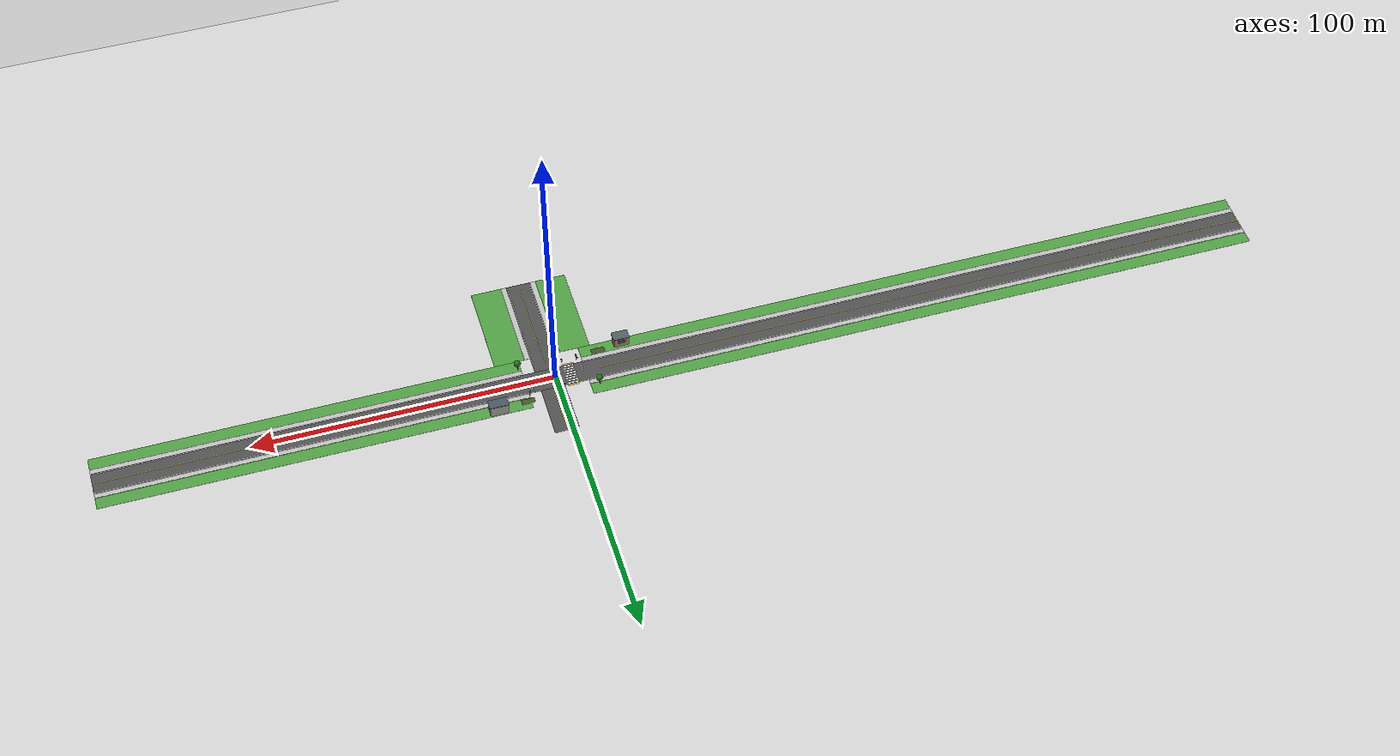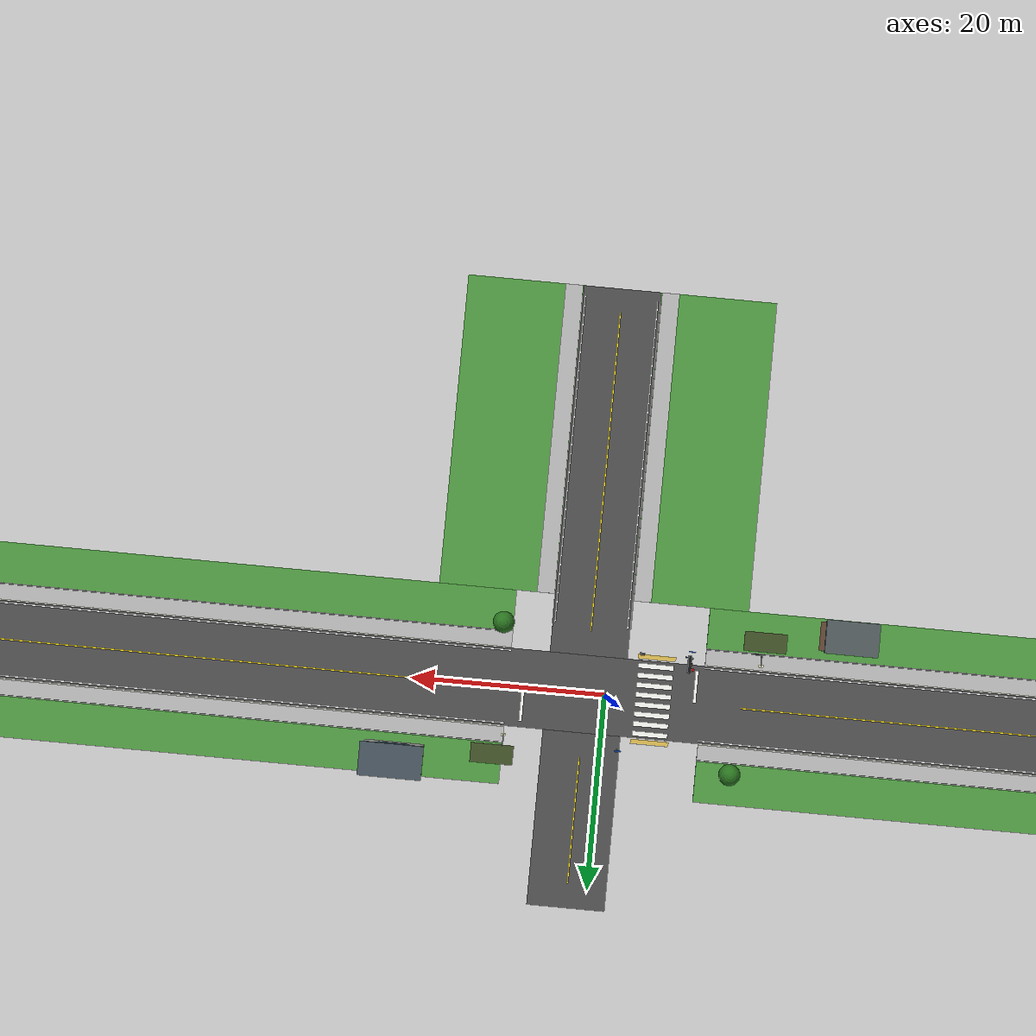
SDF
<?xml version="1.0" ?>
<sdf version="1.6">
  <world name="safe_drive_signal_intersection">
    <plugin name="safe_drive_ground_truth" filename="libgazebo_ros_state.so">
      <ros>
        <namespace>/safe_drive/gazebo</namespace>
      </ros>
      <update_rate>20.0</update_rate>
    </plugin>
    <physics name="ode" type="ode">
      <max_step_size>0.001</max_step_size>
      <real_time_factor>1.0</real_time_factor>
      <real_time_update_rate>1000</real_time_update_rate>
    </physics>

    <gravity>0 0 -9.81</gravity>
    <magnetic_field>6e-6 2.3e-5 -4.2e-5</magnetic_field>
    <atmosphere type="adiabatic"/>

    <!-- Catch vehicles that leave the finite test road while a controller is
         being developed. The road surface remains the active driving plane. -->
    <include>
      <uri>model://ground_plane</uri>
      <pose>0 0 -0.1 0 0 0</pose>
    </include>

    <scene>
      <ambient>0.45 0.45 0.45 1</ambient>
      <background>0.70 0.85 1.0 1</background>
      <shadows>true</shadows>
    </scene>

    <gui>
      <camera name="user_camera">
        <track_visual>
          <name>safe_drive_ego</name>
          <static>true</static>
          <use_model_frame>true</use_model_frame>
          <xyz>-12 0 8</xyz>
        </track_visual>
      </camera>
    </gui>

    <light name="sun" type="directional">
      <cast_shadows>true</cast_shadows>
      <pose>0 0 10 0 0 0</pose>
      <diffuse>0.8 0.8 0.8 1</diffuse>
      <specular>0.2 0.2 0.2 1</specular>
      <attenuation>
        <range>1000</range>
        <constant>0.9</constant>
        <linear>0.01</linear>
        <quadratic>0.001</quadratic>
      </attenuation>
      <direction>-0.5 0.1 -0.9</direction>
    </light>

    <model name="road">
      <static>true</static>
      <link name="road_link">
        <collision name="collision">
          <pose>-45 0 -0.05 0 0 0</pose>
          <geometry><box><size>390 8 0.1</size></box></geometry>
          <surface>
            <friction><ode><mu>1.0</mu><mu2>1.0</mu2></ode></friction>
          </surface>
        </collision>
        <visual name="asphalt">
          <pose>-45 0 -0.045 0 0 0</pose>
          <geometry><box><size>390 8 0.01</size></box></geometry>
          <material>
            <script>
              <uri>file://safe_drive_road/materials/scripts</uri>
              <uri>file://safe_drive_road/materials/textures</uri>
              <name>SafeDrive/Asphalt</name>
            </script>
          </material>
        </visual>
        <visual name="center_line_a">
          <pose>-127 0 -0.037 0 0 0</pose>
          <geometry><box><size>226 0.12 0.01</size></box></geometry>
          <material><ambient>0.95 0.85 0.10 1</ambient><diffuse>0.95 0.85 0.10 1</diffuse></material>
        </visual>
        <visual name="center_line_c">
          <pose>80 0 -0.037 0 0 0</pose>
          <geometry><box><size>140 0.12 0.01</size></box></geometry>
          <material><ambient>0.95 0.85 0.10 1</ambient><diffuse>0.95 0.85 0.10 1</diffuse></material>
        </visual>
        <visual name="left_edge_line_west">
          <pose>-125 3.75 -0.037 0 0 0</pose>
          <geometry><box><size>230 0.12 0.01</size></box></geometry>
          <material><ambient>0.95 0.95 0.95 1</ambient><diffuse>0.95 0.95 0.95 1</diffuse></material>
        </visual>
        <visual name="left_edge_line_east">
          <pose>80 3.75 -0.037 0 0 0</pose>
          <geometry><box><size>140 0.12 0.01</size></box></geometry>
          <material><ambient>0.95 0.95 0.95 1</ambient><diffuse>0.95 0.95 0.95 1</diffuse></material>
        </visual>
        <visual name="right_edge_line_west">
          <pose>-125 -3.75 -0.037 0 0 0</pose>
          <geometry><box><size>230 0.12 0.01</size></box></geometry>
          <material><ambient>0.95 0.95 0.95 1</ambient><diffuse>0.95 0.95 0.95 1</diffuse></material>
        </visual>
        <visual name="right_edge_line_east">
          <pose>80 -3.75 -0.037 0 0 0</pose>
          <geometry><box><size>140 0.12 0.01</size></box></geometry>
          <material><ambient>0.95 0.95 0.95 1</ambient><diffuse>0.95 0.95 0.95 1</diffuse></material>
        </visual>
        <!-- Zebra bars run parallel to east-west vehicle travel, repeated
             across the pedestrian's north-south path. Paint has no collision. -->
        <visual name="crosswalk_bar_1"><pose>-5 -3.45 -0.030 0 0 0</pose><geometry><box><size>3.6 0.50 0.012</size></box></geometry><material><ambient>0.96 0.96 0.94 1</ambient><diffuse>0.96 0.96 0.94 1</diffuse></material></visual>
        <visual name="crosswalk_bar_2"><pose>-5 -2.45 -0.030 0 0 0</pose><geometry><box><size>3.6 0.50 0.012</size></box></geometry><material><ambient>0.96 0.96 0.94 1</ambient><diffuse>0.96 0.96 0.94 1</diffuse></material></visual>
        <visual name="crosswalk_bar_3"><pose>-5 -1.45 -0.030 0 0 0</pose><geometry><box><size>3.6 0.50 0.012</size></box></geometry><material><ambient>0.96 0.96 0.94 1</ambient><diffuse>0.96 0.96 0.94 1</diffuse></material></visual>
        <visual name="crosswalk_bar_4"><pose>-5 -0.45 -0.030 0 0 0</pose><geometry><box><size>3.6 0.50 0.012</size></box></geometry><material><ambient>0.96 0.96 0.94 1</ambient><diffuse>0.96 0.96 0.94 1</diffuse></material></visual>
        <visual name="crosswalk_bar_5"><pose>-5 0.55 -0.030 0 0 0</pose><geometry><box><size>3.6 0.50 0.012</size></box></geometry><material><ambient>0.96 0.96 0.94 1</ambient><diffuse>0.96 0.96 0.94 1</diffuse></material></visual>
        <visual name="crosswalk_bar_6"><pose>-5 1.55 -0.030 0 0 0</pose><geometry><box><size>3.6 0.50 0.012</size></box></geometry><material><ambient>0.96 0.96 0.94 1</ambient><diffuse>0.96 0.96 0.94 1</diffuse></material></visual>
        <visual name="crosswalk_bar_7"><pose>-5 2.55 -0.030 0 0 0</pose><geometry><box><size>3.6 0.50 0.012</size></box></geometry><material><ambient>0.96 0.96 0.94 1</ambient><diffuse>0.96 0.96 0.94 1</diffuse></material></visual>
        <visual name="crosswalk_bar_8"><pose>-5 3.55 -0.030 0 0 0</pose><geometry><box><size>3.6 0.50 0.012</size></box></geometry><material><ambient>0.96 0.96 0.94 1</ambient><diffuse>0.96 0.96 0.94 1</diffuse></material></visual>
        <!-- The 0.30 m approach line ends 2.3 m before the nearest bar.
             Other approaches stop outside the central intersection square. -->
        <visual name="eastbound_stop_line"><pose>-9.25 -1.75 -0.029 0 0 0</pose><geometry><box><size>0.30 3.30 0.012</size></box></geometry><material><ambient>0.96 0.96 0.94 1</ambient><diffuse>0.96 0.96 0.94 1</diffuse></material></visual>
        <visual name="westbound_stop_line"><pose>8.4 1.75 -0.029 0 0 0</pose><geometry><box><size>0.30 3.30 0.012</size></box></geometry><material><ambient>0.96 0.96 0.94 1</ambient><diffuse>0.96 0.96 0.94 1</diffuse></material></visual>
      </link>
    </model>
    <model name="cross_road">
      <static>true</static>
      <link name="surface">
        <collision name="north_road_collision"><pose>2 13 -0.05 0 0 0</pose><geometry><box><size>8 18 0.1</size></box></geometry></collision>
        <collision name="south_road_collision"><pose>2 -23 -0.05 0 0 0</pose><geometry><box><size>8 38 0.1</size></box></geometry></collision>
        <visual name="north_asphalt"><pose>2 13 -0.045 0 0 0</pose><geometry><box><size>8 18 0.01</size></box></geometry><material><script><uri>file://safe_drive_road/materials/scripts</uri><uri>file://safe_drive_road/materials/textures</uri><name>SafeDrive/Asphalt</name></script></material></visual>
        <visual name="south_asphalt"><pose>2 -23 -0.045 0 0 0</pose><geometry><box><size>8 38 0.01</size></box></geometry><material><script><uri>file://safe_drive_road/materials/scripts</uri><uri>file://safe_drive_road/materials/textures</uri><name>SafeDrive/Asphalt</name></script></material></visual>
        <visual name="north_center_line"><pose>2 13 -0.035 0 0 0</pose><geometry><box><size>0.12 13 0.012</size></box></geometry><material><ambient>0.95 0.85 0.1 1</ambient><diffuse>0.95 0.85 0.1 1</diffuse></material></visual>
        <visual name="south_center_line"><pose>2 -23 -0.035 0 0 0</pose><geometry><box><size>0.12 33 0.012</size></box></geometry><material><ambient>0.95 0.85 0.1 1</ambient><diffuse>0.95 0.85 0.1 1</diffuse></material></visual>
        <visual name="south_west_edge_line"><pose>-1.75 -24 -0.035 0 0 0</pose><geometry><box><size>0.10 34 0.012</size></box></geometry><material><ambient>0.95 0.95 0.95 1</ambient><diffuse>0.95 0.95 0.95 1</diffuse></material></visual>
        <visual name="south_east_edge_line"><pose>5.75 -24 -0.035 0 0 0</pose><geometry><box><size>0.10 34 0.012</size></box></geometry><material><ambient>0.95 0.95 0.95 1</ambient><diffuse>0.95 0.95 0.95 1</diffuse></material></visual>
      </link>
    </model>
    <!-- Roadside vehicle signal: three horizontal circular aspects face
         approaching eastbound traffic. It is independent of the pedestrian face. -->
    <model name="vehicle_signal_fixture"><static>true</static><link name="post">
      <visual name="pole"><pose>-8.0 -4.72 1.48 0 0 0</pose><geometry><cylinder><radius>0.075</radius><length>2.96</length></cylinder></geometry><material><ambient>0.20 0.23 0.25 1</ambient><diffuse>0.31 0.34 0.36 1</diffuse></material></visual>
      <visual name="housing"><pose>-8.0 -4.10 3.00 0 0 0</pose><geometry><box><size>0.30 1.78 0.52</size></box></geometry><material><ambient>0.035 0.045 0.05 1</ambient><diffuse>0.065 0.075 0.085 1</diffuse></material></visual>
      <visual name="bracket"><pose>-8.0 -4.43 2.98 0 0 0</pose><geometry><box><size>0.12 0.67 0.10</size></box></geometry><material><ambient>0.20 0.23 0.25 1</ambient><diffuse>0.31 0.34 0.36 1</diffuse></material></visual>
      <visual name="red_lens"><pose>-8.19 -3.55 3.00 0 0 0</pose><geometry><sphere><radius>0.18</radius></sphere></geometry><material><ambient>0.18 0.025 0.02 1</ambient><diffuse>0.18 0.025 0.02 1</diffuse></material></visual>
      <visual name="yellow_lens"><pose>-8.19 -4.1 3.00 0 0 0</pose><geometry><sphere><radius>0.18</radius></sphere></geometry><material><ambient>0.18 0.11 0.015 1</ambient><diffuse>0.18 0.11 0.015 1</diffuse></material></visual>
      <visual name="green_lens"><pose>-8.19 -4.65 3.00 0 0 0</pose><geometry><sphere><radius>0.18</radius></sphere></geometry><material><ambient>0.015 0.15 0.025 1</ambient><diffuse>0.015 0.15 0.025 1</diffuse></material></visual>
    </link></model>
    <!-- Pedestrian signal: two square aspects at the south curb. Its lit face
         points north (+y) toward the crossing and the following camera. -->
    <model name="pedestrian_signal_fixture"><static>true</static><link name="post">
      <visual name="pole"><pose>-3.3 -4.68 1.04 0 0 0</pose><geometry><cylinder><radius>0.05</radius><length>2.08</length></cylinder></geometry><material><ambient>0.20 0.23 0.25 1</ambient><diffuse>0.31 0.34 0.36 1</diffuse></material></visual>
      <visual name="housing"><pose>-3.3 -4.70 2.08 0 0 0</pose><geometry><box><size>0.48 0.23 0.83</size></box></geometry><material><ambient>0.035 0.045 0.05 1</ambient><diffuse>0.065 0.075 0.085 1</diffuse></material></visual>
      <visual name="dont_walk_lens"><pose>-3.3 -4.56 2.27 0 0 0</pose><geometry><box><size>0.31 0.025 0.30</size></box></geometry><material><ambient>0.17 0.025 0.02 1</ambient><diffuse>0.17 0.025 0.02 1</diffuse></material></visual>
      <visual name="walk_lens"><pose>-3.3 -4.56 1.89 0 0 0</pose><geometry><box><size>0.31 0.025 0.30</size></box></geometry><material><ambient>0.02 0.15 0.04 1</ambient><diffuse>0.02 0.15 0.04 1</diffuse></material></visual>
    </link></model>
    <model name="vehicle_red_lamp"><static>false</static><pose>-8.43 -3.55 3.0 0 0 0</pose><link name="bulb"><gravity>false</gravity><visual name="lit"><geometry><sphere><radius>0.15</radius></sphere></geometry><material><ambient>1 0.035 0.025 1</ambient><diffuse>1 0.035 0.025 1</diffuse><emissive>1 0.035 0.025 1</emissive></material></visual></link></model>
    <model name="vehicle_yellow_lamp"><static>false</static><pose>-8.43 -4.1 -2.0 0 0 0</pose><link name="bulb"><gravity>false</gravity><visual name="lit"><geometry><sphere><radius>0.15</radius></sphere></geometry><material><ambient>1 0.60 0.02 1</ambient><diffuse>1 0.60 0.02 1</diffuse><emissive>1 0.60 0.02 1</emissive></material></visual></link></model>
    <model name="vehicle_green_lamp"><static>false</static><pose>-8.43 -4.65 -2.0 0 0 0</pose><link name="bulb"><gravity>false</gravity><visual name="lit"><geometry><sphere><radius>0.15</radius></sphere></geometry><material><ambient>0.03 0.95 0.08 1</ambient><diffuse>0.03 0.95 0.08 1</diffuse><emissive>0.03 0.95 0.08 1</emissive></material></visual></link></model>
    <model name="pedestrian_dont_walk_lamp"><static>false</static><pose>-3.3 -4.53 2.27 0 0 0</pose><link name="bulb"><gravity>false</gravity><visual name="lit"><geometry><box><size>0.26 0.025 0.25</size></box></geometry><material><ambient>1 0.04 0.03 1</ambient><diffuse>1 0.04 0.03 1</diffuse><emissive>1 0.04 0.03 1</emissive></material></visual></link></model>
    <model name="pedestrian_walk_lamp"><static>false</static><pose>-3.3 -4.53 -2.0 0 0 0</pose><link name="bulb"><gravity>false</gravity><visual name="lit"><geometry><box><size>0.26 0.025 0.25</size></box></geometry><material><ambient>0.03 0.95 0.08 1</ambient><diffuse>0.03 0.95 0.08 1</diffuse><emissive>0.03 0.95 0.08 1</emissive></material></visual></link></model>
    <model name="roadside">
      <static>true</static>
      <link name="streetscape">
        <visual name="north_grass_west">
          <pose>-125 7.0 -0.06 0 0 0</pose>
          <geometry><box><size>230 6 0.08</size></box></geometry>
          <material><script><uri>file://safe_drive_road/materials/scripts</uri><uri>file://safe_drive_road/materials/textures</uri><name>SafeDrive/Grass</name></script></material>
        </visual>
        <visual name="north_grass_east">
          <pose>80 7.0 -0.06 0 0 0</pose>
          <geometry><box><size>140 6 0.08</size></box></geometry>
          <material><script><uri>file://safe_drive_road/materials/scripts</uri><uri>file://safe_drive_road/materials/textures</uri><name>SafeDrive/Grass</name></script></material>
        </visual>
        <visual name="south_grass_west">
          <pose>-125 -7.0 -0.06 0 0 0</pose>
          <geometry><box><size>230 6 0.08</size></box></geometry>
          <material><script><uri>file://safe_drive_road/materials/scripts</uri><uri>file://safe_drive_road/materials/textures</uri><name>SafeDrive/Grass</name></script></material>
        </visual>
        <visual name="south_grass_east">
          <pose>80 -7.0 -0.06 0 0 0</pose>
          <geometry><box><size>140 6 0.08</size></box></geometry>
          <material><script><uri>file://safe_drive_road/materials/scripts</uri><uri>file://safe_drive_road/materials/textures</uri><name>SafeDrive/Grass</name></script></material>
        </visual>
        <visual name="south_arm_grass_west">
          <pose>-8 -26 -0.06 0 0 0</pose>
          <geometry><box><size>12 32 0.08</size></box></geometry>
          <material><script><uri>file://safe_drive_road/materials/scripts</uri><uri>file://safe_drive_road/materials/textures</uri><name>SafeDrive/Grass</name></script></material>
        </visual>
        <visual name="south_arm_grass_east">
          <pose>12 -26 -0.06 0 0 0</pose>
          <geometry><box><size>12 32 0.08</size></box></geometry>
          <material><script><uri>file://safe_drive_road/materials/scripts</uri><uri>file://safe_drive_road/materials/textures</uri><name>SafeDrive/Grass</name></script></material>
        </visual>
        <visual name="south_arm_sidewalk_west">
          <pose>-3 -26 -0.015 0 0 0</pose>
          <geometry><box><size>1.8 32 0.06</size></box></geometry>
          <material><script><uri>file://safe_drive_road/materials/scripts</uri><uri>file://safe_drive_road/materials/textures</uri><name>SafeDrive/Concrete</name></script></material>
        </visual>
        <visual name="south_arm_sidewalk_east">
          <pose>7 -26 -0.015 0 0 0</pose>
          <geometry><box><size>1.8 32 0.06</size></box></geometry>
          <material><script><uri>file://safe_drive_road/materials/scripts</uri><uri>file://safe_drive_road/materials/textures</uri><name>SafeDrive/Concrete</name></script></material>
        </visual>
        <!-- The curb begins beyond the swept right-turn corner. All curb and
             sidewalk pieces here are visual-only; the road carries wheels. -->
        <visual name="south_arm_curb_west">
          <pose>-2.04 -24 -0.005 0 0 0</pose>
          <geometry><box><size>0.08 34 0.05</size></box></geometry>
          <material><ambient>0.75 0.75 0.70 1</ambient><diffuse>0.80 0.80 0.75 1</diffuse></material>
        </visual>
        <visual name="south_arm_curb_east">
          <pose>6.04 -24 -0.005 0 0 0</pose>
          <geometry><box><size>0.08 34 0.05</size></box></geometry>
          <material><ambient>0.75 0.75 0.70 1</ambient><diffuse>0.80 0.80 0.75 1</diffuse></material>
        </visual>
        <visual name="north_sidewalk_west">
          <pose>-125 4.9 -0.015 0 0 0</pose>
          <geometry><box><size>230 1.8 0.06</size></box></geometry>
          <material><script><uri>file://safe_drive_road/materials/scripts</uri><uri>file://safe_drive_road/materials/textures</uri><name>SafeDrive/Concrete</name></script></material>
        </visual>
        <visual name="north_sidewalk_east">
          <pose>80 4.9 -0.015 0 0 0</pose>
          <geometry><box><size>140 1.8 0.06</size></box></geometry>
          <material><script><uri>file://safe_drive_road/materials/scripts</uri><uri>file://safe_drive_road/materials/textures</uri><name>SafeDrive/Concrete</name></script></material>
        </visual>
        <visual name="south_sidewalk_west">
          <pose>-125 -4.9 -0.015 0 0 0</pose>
          <geometry><box><size>230 1.8 0.06</size></box></geometry>
          <material><script><uri>file://safe_drive_road/materials/scripts</uri><uri>file://safe_drive_road/materials/textures</uri><name>SafeDrive/Concrete</name></script></material>
        </visual>
        <visual name="south_sidewalk_east">
          <pose>80 -4.9 -0.015 0 0 0</pose>
          <geometry><box><size>140 1.8 0.06</size></box></geometry>
          <material><script><uri>file://safe_drive_road/materials/scripts</uri><uri>file://safe_drive_road/materials/textures</uri><name>SafeDrive/Concrete</name></script></material>
        </visual>
        <visual name="north_curb_west">
          <pose>-125 4.04 0.0 0 0 0</pose>
          <geometry><box><size>230 0.12 0.08</size></box></geometry>
          <material><ambient>0.75 0.75 0.70 1</ambient><diffuse>0.80 0.80 0.75 1</diffuse></material>
        </visual>
        <visual name="north_curb_east">
          <pose>80 4.04 0.0 0 0 0</pose>
          <geometry><box><size>140 0.12 0.08</size></box></geometry>
          <material><ambient>0.75 0.75 0.70 1</ambient><diffuse>0.80 0.80 0.75 1</diffuse></material>
        </visual>
        <visual name="south_curb_west">
          <pose>-125 -4.04 0.0 0 0 0</pose>
          <geometry><box><size>230 0.12 0.08</size></box></geometry>
          <material><ambient>0.75 0.75 0.70 1</ambient><diffuse>0.80 0.80 0.75 1</diffuse></material>
        </visual>
        <visual name="south_curb_east">
          <pose>80 -4.04 0.0 0 0 0</pose>
          <geometry><box><size>140 0.12 0.08</size></box></geometry>
          <material><ambient>0.75 0.75 0.70 1</ambient><diffuse>0.80 0.80 0.75 1</diffuse></material>
        </visual>
        <!-- Visual-only paving and roadside props keep the tested road contact
             and the pedestrian crossing geometry unchanged. -->
        <visual name="north_sidewalk_band_west">
          <pose>-125 5.70 0.018 0 0 0</pose>
          <geometry><box><size>230 0.055 0.004</size></box></geometry>
          <material><ambient>0.38 0.40 0.39 1</ambient><diffuse>0.42 0.44 0.42 1</diffuse></material>
        </visual>
        <visual name="north_sidewalk_band_east">
          <pose>80 5.70 0.018 0 0 0</pose>
          <geometry><box><size>140 0.055 0.004</size></box></geometry>
          <material><ambient>0.38 0.40 0.39 1</ambient><diffuse>0.42 0.44 0.42 1</diffuse></material>
        </visual>
        <visual name="south_sidewalk_band_west">
          <pose>-125 -5.70 0.018 0 0 0</pose>
          <geometry><box><size>230 0.055 0.004</size></box></geometry>
          <material><ambient>0.38 0.40 0.39 1</ambient><diffuse>0.42 0.44 0.42 1</diffuse></material>
        </visual>
        <visual name="south_sidewalk_band_east">
          <pose>80 -5.70 0.018 0 0 0</pose>
          <geometry><box><size>140 0.055 0.004</size></box></geometry>
          <material><ambient>0.38 0.40 0.39 1</ambient><diffuse>0.42 0.44 0.42 1</diffuse></material>
        </visual>
        <visual name="north_crossing_entry">
          <pose>-5 4.38 0.019 0 0 0</pose>
          <geometry><box><size>3.90 0.46 0.006</size></box></geometry>
          <material><ambient>0.73 0.63 0.27 1</ambient><diffuse>0.84 0.72 0.31 1</diffuse></material>
        </visual>
        <visual name="south_crossing_entry">
          <pose>-5 -4.38 0.019 0 0 0</pose>
          <geometry><box><size>3.90 0.46 0.006</size></box></geometry>
          <material><ambient>0.73 0.63 0.27 1</ambient><diffuse>0.84 0.72 0.31 1</diffuse></material>
        </visual>
        <visual name="north_planting_bed">
          <pose>11 7.0 -0.01 0 0 0</pose>
          <geometry><box><size>4.4 2.0 0.035</size></box></geometry>
          <material><ambient>0.18 0.24 0.12 1</ambient><diffuse>0.25 0.31 0.15 1</diffuse></material>
        </visual>
        <visual name="south_planting_bed">
          <pose>-16 -7.0 -0.01 0 0 0</pose>
          <geometry><box><size>4.4 2.0 0.035</size></box></geometry>
          <material><ambient>0.18 0.24 0.12 1</ambient><diffuse>0.25 0.31 0.15 1</diffuse></material>
        </visual>
        <visual name="north_lamp_post">
          <pose>10 5.70 2.10 0 0 0</pose>
          <geometry><cylinder><radius>0.065</radius><length>4.20</length></cylinder></geometry>
          <material><ambient>0.24 0.28 0.31 1</ambient><diffuse>0.36 0.40 0.43 1</diffuse></material>
        </visual>
        <visual name="north_lamp_arm">
          <pose>10 5.15 4.12 0 0 0</pose>
          <geometry><box><size>0.09 1.18 0.08</size></box></geometry>
          <material><ambient>0.24 0.28 0.31 1</ambient><diffuse>0.36 0.40 0.43 1</diffuse></material>
        </visual>
        <visual name="north_lamp_head">
          <pose>10 4.62 4.06 0 0 0</pose>
          <geometry><box><size>0.46 0.24 0.10</size></box></geometry>
          <material><ambient>0.83 0.81 0.64 1</ambient><diffuse>0.88 0.86 0.70 1</diffuse></material>
        </visual>
        <visual name="south_lamp_post">
          <pose>-15 -5.70 2.10 0 0 0</pose>
          <geometry><cylinder><radius>0.065</radius><length>4.20</length></cylinder></geometry>
          <material><ambient>0.24 0.28 0.31 1</ambient><diffuse>0.36 0.40 0.43 1</diffuse></material>
        </visual>
        <visual name="south_lamp_arm">
          <pose>-15 -5.15 4.12 0 0 0</pose>
          <geometry><box><size>0.09 1.18 0.08</size></box></geometry>
          <material><ambient>0.24 0.28 0.31 1</ambient><diffuse>0.36 0.40 0.43 1</diffuse></material>
        </visual>
        <visual name="south_lamp_head">
          <pose>-15 -4.62 4.06 0 0 0</pose>
          <geometry><box><size>0.46 0.24 0.10</size></box></geometry>
          <material><ambient>0.83 0.81 0.64 1</ambient><diffuse>0.88 0.86 0.70 1</diffuse></material>
        </visual>
        <visual name="north_pavilion_body">
          <pose>21 8.25 2.0 0 0 0</pose>
          <geometry><box><size>6.0 3.1 4.0</size></box></geometry>
          <material><ambient>0.50 0.52 0.49 1</ambient><diffuse>0.66 0.68 0.64 1</diffuse></material>
        </visual>
        <visual name="north_pavilion_roof">
          <pose>21 8.25 4.12 0 0 0</pose>
          <geometry><box><size>6.4 3.4 0.25</size></box></geometry>
          <material><ambient>0.19 0.24 0.29 1</ambient><diffuse>0.27 0.32 0.36 1</diffuse></material>
        </visual>
        <visual name="north_pavilion_window">
          <pose>21 6.69 2.25 0 0 0</pose>
          <geometry><box><size>3.2 0.025 1.35</size></box></geometry>
          <material><ambient>0.11 0.23 0.29 1</ambient><diffuse>0.20 0.35 0.41 1</diffuse></material>
        </visual>
        <visual name="south_pavilion_body">
          <pose>-24 -8.20 1.75 0 0 0</pose>
          <geometry><box><size>5.0 3.0 3.5</size></box></geometry>
          <material><ambient>0.57 0.42 0.32 1</ambient><diffuse>0.70 0.53 0.41 1</diffuse></material>
        </visual>
        <visual name="south_pavilion_roof">
          <pose>-24 -8.20 3.62 0 0 0</pose>
          <geometry><box><size>5.4 3.4 0.25</size></box></geometry>
          <material><ambient>0.22 0.26 0.28 1</ambient><diffuse>0.31 0.35 0.36 1</diffuse></material>
        </visual>
        <visual name="south_pavilion_window">
          <pose>-24 -6.69 2.02 0 0 0</pose>
          <geometry><box><size>2.7 0.025 1.15</size></box></geometry>
          <material><ambient>0.11 0.23 0.29 1</ambient><diffuse>0.20 0.35 0.41 1</diffuse></material>
        </visual>
        <visual name="south_crossing_sign_post">
          <pose>-8.3 -5.35 1.05 0 0 0</pose>
          <geometry><cylinder><radius>0.045</radius><length>2.1</length></cylinder></geometry>
          <material><ambient>0.32 0.35 0.37 1</ambient><diffuse>0.55 0.58 0.60 1</diffuse></material>
        </visual>
        <visual name="south_crossing_sign">
          <pose>-8.3 -5.35 2.25 0 0 0</pose>
          <geometry><box><size>0.65 0.08 0.65</size></box></geometry>
          <material><ambient>0.08 0.25 0.67 1</ambient><diffuse>0.10 0.37 0.85 1</diffuse></material>
        </visual>
        <visual name="north_crossing_sign_post">
          <pose>-1.7 5.35 1.05 0 0 0</pose>
          <geometry><cylinder><radius>0.045</radius><length>2.1</length></cylinder></geometry>
          <material><ambient>0.32 0.35 0.37 1</ambient><diffuse>0.55 0.58 0.60 1</diffuse></material>
        </visual>
        <visual name="north_crossing_sign">
          <pose>-1.7 5.35 2.25 0 0 0</pose>
          <geometry><box><size>0.65 0.08 0.65</size></box></geometry>
          <material><ambient>0.08 0.25 0.67 1</ambient><diffuse>0.10 0.37 0.85 1</diffuse></material>
        </visual>
        <visual name="south_tree_trunk">
          <pose>11 -6.6 1.3 0 0 0</pose>
          <geometry><cylinder><radius>0.16</radius><length>2.6</length></cylinder></geometry>
          <material><ambient>0.27 0.15 0.07 1</ambient><diffuse>0.39 0.23 0.10 1</diffuse></material>
        </visual>
        <visual name="south_tree_crown">
          <pose>11 -6.6 3.1 0 0 0</pose>
          <geometry><sphere><radius>1.1</radius></sphere></geometry>
          <material><ambient>0.09 0.27 0.07 1</ambient><diffuse>0.16 0.45 0.12 1</diffuse></material>
        </visual>
        <visual name="north_tree_trunk">
          <pose>-13 6.6 1.3 0 0 0</pose>
          <geometry><cylinder><radius>0.16</radius><length>2.6</length></cylinder></geometry>
          <material><ambient>0.27 0.15 0.07 1</ambient><diffuse>0.39 0.23 0.10 1</diffuse></material>
        </visual>
        <visual name="north_tree_crown">
          <pose>-13 6.6 3.1 0 0 0</pose>
          <geometry><sphere><radius>1.1</radius></sphere></geometry>
          <material><ambient>0.09 0.27 0.07 1</ambient><diffuse>0.16 0.45 0.12 1</diffuse></material>
        </visual>
      </link>
    </model>
  </world>
</sdf>
